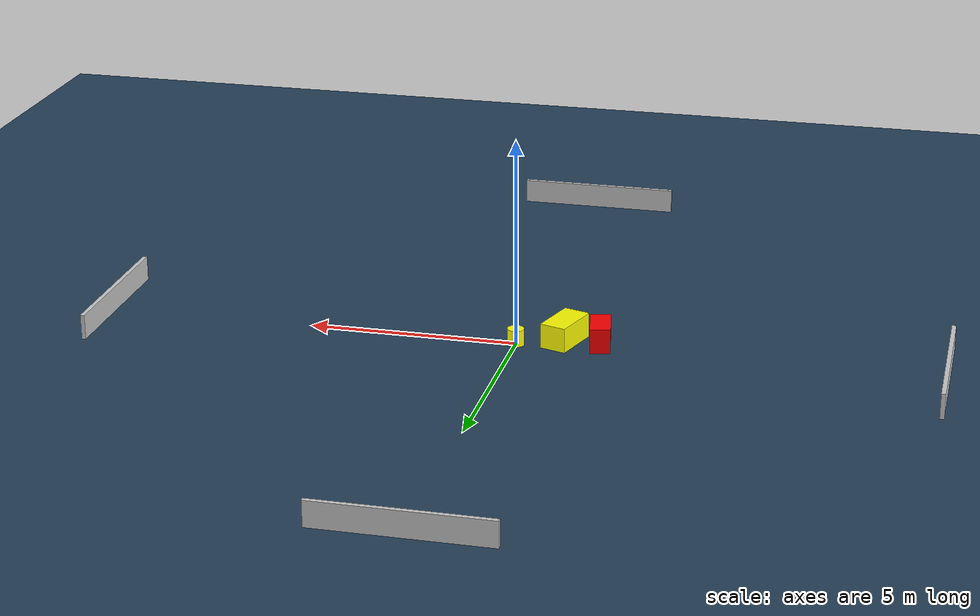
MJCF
<?xml version="1.0" ?>
<mujoco model="generated_environment">
  <option timestep="0.01" integrator="RK4" cone="elliptic"/>
  <default>
    <geom density="1"/>
  </default>
  <asset>
    <texture builtin="gradient" height="3072" name="skybox" rgb1="0.3 0.5 0.7" rgb2="0 0 0" type="skybox" width="512"/>
    <texture builtin="checker" height="300" name="groundplane" rgb1="0.2 0.3 0.4" rgb2="0.1 0.2 0.3" type="2d" width="300"/>
    <material name="groundplane" reflectance="0.2" texrepeat="5 5" texture="groundplane"/>
  </asset>
  <worldbody>
    <light dir="0 0 -1" directional="true" pos="0 0 1.5"/>
    <geom condim="3" friction="0.5 0.005 0.001" material="groundplane" name="floor" pos="0 0 0" size="0 0 0.05" type="plane"/>
    <body name="walls">
      <geom name="wall_1" condim="4" pos="-10.0 0.0 0.3" rgba="0.800000011920929 0.800000011920929 0.800000011920929 1.0" size="0.05 2.0 0.3" type="box"/>
      <geom name="wall_2" condim="4" pos="10.0 0.0 0.3" rgba="0.800000011920929 0.800000011920929 0.800000011920929 1.0" size="0.05 2.0 0.3" type="box"/>
      <geom name="wall_3" condim="4" pos="0.0 -10.0 0.3" rgba="0.800000011920929 0.800000011920929 0.800000011920929 1.0" size="2.0 0.05 0.3" type="box"/>
      <geom name="wall_4" condim="4" pos="0.0 10.0 0.3" rgba="0.800000011920929 0.800000011920929 0.800000011920929 1.0" size="2.0 0.05 0.3" type="box"/>
    </body>
    <body name="robot">
      <joint name="joint_x" type="slide" pos="0 0 0" axis="1 0 0"/>
      <joint name="joint_y" type="slide" pos="0 0 0" axis="0 1 0"/>
      <geom name="robot" type="cylinder" pos="0.0 0.0 0.2" size="0.2 0.2 0.0" mass="5.0" friction="1.0 0.005 0.0001" condim="4" rgba="1.0 1.0 0.0 1.0"/>
    </body>
    <body name="obstacle_1_movable">
      <geom name="obstacle_1_movable" condim="4" pos="-1.0919326476823574 -0.3821382988051594 0.3" euler="0 0 252.23899113626123" friction="0.0 0.005 0.001" rgba="1.0 1.0 0.0 1.0" size="0.5869049827529951 0.323128235338246 0.3" type="box" mass="0.1"/>
      <joint type="free"/>
    </body>
    <body name="obstacle_2_static">
      <geom name="obstacle_2_static" condim="4" pos="-1.946119420781341 -0.34755187939866716 0.3" euler="0 0 190.16558637307682" friction="0.0 0.005 0.001" rgba="1.0 0.0 0.0 1.0" size="0.24259898159304136 0.48028492668835365 0.3" type="box"/>
    </body>
  </worldbody>
  <actuator>
    <motor name="actuator_x" joint="joint_x" gear="1" ctrlrange="-1 1"/>
    <motor name="actuator_y" joint="joint_y" gear="1" ctrlrange="-1 1"/>
  </actuator>
</mujoco>
